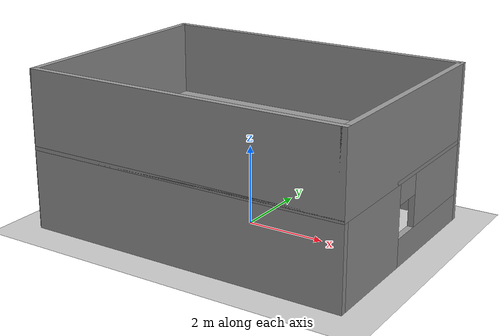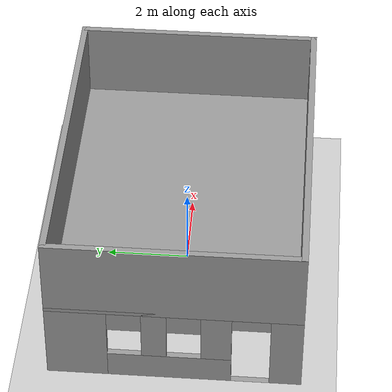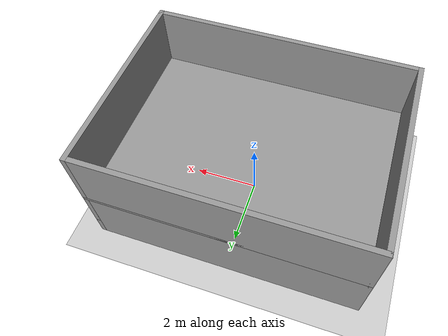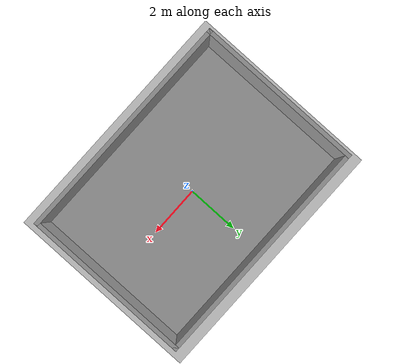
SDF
<sdf version="1.7">
 <world name="default">
  <light name="sun" type="directional">
   <pose>0 0 10 0 -0 0</pose>
   <diffuse>0.8 0.8 0.8 1</diffuse>
   <specular>0.2 0.2 0.2 1</specular>
   <attenuation>
    <range>1000</range>
    <constant>0.9</constant>
    <linear>0.01</linear>
    <quadratic>0.001</quadratic>
   </attenuation>
   <direction>-0.5 0.1 -0.9</direction>
   <spot><inner_angle>0</inner_angle><outer_angle>0</outer_angle><falloff>0</falloff></spot>
  </light>
  <model name="ground_plane">
   <static>1</static>
   <link name="link">
    <collision name="collision">
     <geometry><plane><normal>0 0 1</normal><size>100 100</size></plane></geometry>
     <surface>
      <contact><collide_bitmask>65535</collide_bitmask></contact>
      <friction><ode><mu>100</mu><mu2>50</mu2></ode></friction>
     </surface>
    </collision>
    <visual name="visual">
     <cast_shadows>0</cast_shadows>
     <geometry><plane><normal>0 0 1</normal><size>100 100</size></plane></geometry>
     <material>
      <script><uri>file://media/materials/scripts/gazebo.material</uri><name>Gazebo/Grey</name></script>
     </material>
    </visual>
   </link>
  </model>
  <gravity>0 0 -9.8</gravity>
  <magnetic_field>6e-06 2.3e-05 -4.2e-05</magnetic_field>
  <atmosphere type="adiabatic"/>
  <physics type="ode">
   <max_step_size>0.001</max_step_size>
   <real_time_factor>1</real_time_factor>
   <real_time_update_rate>1000</real_time_update_rate>
  </physics>
  <scene><ambient>0.4 0.4 0.4 1</ambient><background>0.7 0.7 0.7 1</background><shadows>1</shadows></scene>
  <spherical_coordinates>
   <surface_model>EARTH_WGS84</surface_model>
   <latitude_deg>0</latitude_deg>
   <longitude_deg>0</longitude_deg>
   <elevation>0</elevation>
   <heading_deg>0</heading_deg>
  </spherical_coordinates>
  <model name="room_10_9">
   <pose>-0.012242 0.006 0 0 -0 0</pose>
   <link name="Floor_0">
    <collision name="Floor_0_Collision">
     <geometry><box><size>8.2645 6 0.1</size></box></geometry>
     <pose>0 0 0.05 0 -0 0</pose>
    </collision>
    <visual name="Floor_0_Visual">
     <pose>0 0 0.05 0 -0 0</pose>
     <geometry><box><size>8.2645 6 0.1</size></box></geometry>
     <material>
      <script><uri>file://media/materials/scripts/gazebo.material</uri><name>Gazebo/Grey</name></script>
      <ambient>1 1 1 1</ambient>
     </material>
     <meta><layer>1</layer></meta>
    </visual>
    <pose>-8e-06 -0 2 0 -0 0</pose>
   </link>
   <link name="Wall_11">
    <collision name="Wall_11_Collision">
     <geometry><box><size>8.253 0.15 2</size></box></geometry>
     <pose>0 0 1 0 -0 0</pose>
    </collision>
    <visual name="Wall_11_Visual">
     <pose>0 0 1 0 -0 0</pose>
     <geometry><box><size>8.253 0.15 2</size></box></geometry>
     <material>
      <script><uri>file://media/materials/scripts/gazebo.material</uri><name>Gazebo/Grey</name></script>
      <ambient>1 1 1 1</ambient>
     </material>
     <meta><layer>1</layer></meta>
    </visual>
    <pose>0.005742 2.925 2 0 -0 0</pose>
   </link>
   <link name="Wall_12">
    <collision name="Wall_12_Collision">
     <geometry><box><size>6 0.15 2</size></box></geometry>
     <pose>0 0 1 0 -0 0</pose>
    </collision>
    <visual name="Wall_12_Visual">
     <pose>0 0 1 0 -0 0</pose>
     <geometry><box><size>6 0.15 2</size></box></geometry>
     <material>
      <script><uri>file://media/materials/scripts/gazebo.material</uri><name>Gazebo/Grey</name></script>
      <ambient>1 1 1 1</ambient>
     </material>
     <meta><layer>1</layer></meta>
    </visual>
    <pose>-4.05726 -0 2 0 -0 -1.5708</pose>
   </link>
   <link name="Wall_13">
    <collision name="Wall_13_Collision">
     <geometry><box><size>8.253 0.15 2</size></box></geometry>
     <pose>0 0 1 0 -0 0</pose>
    </collision>
    <visual name="Wall_13_Visual">
     <pose>0 0 1 0 -0 0</pose>
     <geometry><box><size>8.253 0.15 2</size></box></geometry>
     <material>
      <script><uri>file://media/materials/scripts/gazebo.material</uri><name>Gazebo/Grey</name></script>
      <ambient>1 1 1 1</ambient>
     </material>
     <meta><layer>1</layer></meta>
    </visual>
    <pose>0.005742 -2.925 2 0 -0 0</pose>
   </link>
   <link name="Wall_14">
    <collision name="Wall_14_Collision">
     <geometry><box><size>6 0.15 2</size></box></geometry>
     <pose>0 0 1 0 -0 0</pose>
    </collision>
    <visual name="Wall_14_Visual">
     <pose>0 0 1 0 -0 0</pose>
     <geometry><box><size>6 0.15 2</size></box></geometry>
     <material>
      <script><uri>file://media/materials/scripts/gazebo.material</uri><name>Gazebo/Grey</name></script>
      <ambient>1 1 1 1</ambient>
     </material>
     <meta><layer>1</layer></meta>
    </visual>
    <pose>4.05724 -0 2 0 -0 1.5708</pose>
   </link>
   <link name="Wall_5">
    <collision name="Wall_5_Collision">
     <geometry><box><size>8.25303 0.15 2</size></box></geometry>
     <pose>0 0 1 0 -0 0</pose>
    </collision>
    <visual name="Wall_5_Visual">
     <pose>0 0 1 0 -0 0</pose>
     <geometry><box><size>8.25303 0.15 2</size></box></geometry>
     <material>
      <script><uri>file://media/materials/scripts/gazebo.material</uri><name>Gazebo/Grey</name></script>
      <ambient>1 1 1 1</ambient>
     </material>
     <meta><layer>0</layer></meta>
    </visual>
    <pose>0.005742 2.925 0 0 -0 0</pose>
   </link>
   <link name="Wall_7">
    <pose>-4.05726 -0 0 0 -0 -1.5708</pose>
    <visual name="Wall_7_Visual_0">
     <pose>-2.27863 0 1 0 -0 0</pose>
     <geometry><box><size>1.44274 0.15 2</size></box></geometry>
     <material>
      <script><uri>file://media/materials/scripts/gazebo.material</uri><name>Gazebo/Grey</name></script>
      <ambient>1 1 1 1</ambient>
     </material>
     <meta><layer>0</layer></meta>
    </visual>
    <collision name="Wall_7_Collision_0">
     <geometry><box><size>1.44274 0.15 2</size></box></geometry>
     <pose>-2.27863 0 1 0 -0 0</pose>
    </collision>
    <visual name="Wall_7_Visual_1">
     <pose>2.62155 0 1 0 -0 0</pose>
     <geometry><box><size>0.756891 0.15 2</size></box></geometry>
     <material>
      <script><uri>file://media/materials/scripts/gazebo.material</uri><name>Gazebo/Grey</name></script>
      <ambient>1 1 1 1</ambient>
     </material>
     <meta><layer>0</layer></meta>
    </visual>
    <collision name="Wall_7_Collision_1">
     <geometry><box><size>0.756891 0.15 2</size></box></geometry>
     <pose>2.62155 0 1 0 -0 0</pose>
    </collision>
    <visual name="Wall_7_Visual_2">
     <pose>-0.107078 0 0.35 0 -0 0</pose>
     <geometry><box><size>2.90037 0.15 0.7</size></box></geometry>
     <material>
      <script><uri>file://media/materials/scripts/gazebo.material</uri><name>Gazebo/Grey</name></script>
      <ambient>1 1 1 1</ambient>
     </material>
     <meta><layer>0</layer></meta>
    </visual>
    <collision name="Wall_7_Collision_2">
     <geometry><box><size>2.90037 0.15 0.7</size></box></geometry>
     <pose>-0.107078 0 0.35 0 -0 0</pose>
    </collision>
    <visual name="Wall_7_Visual_3">
     <pose>1.79311 0 0 0 -0 0</pose>
     <geometry><box><size>0.9 0.15 0</size></box></geometry>
     <material>
      <script><uri>file://media/materials/scripts/gazebo.material</uri><name>Gazebo/Grey</name></script>
      <ambient>1 1 1 1</ambient>
     </material>
     <meta><layer>0</layer></meta>
    </visual>
    <collision name="Wall_7_Collision_3">
     <geometry><box><size>0.9 0.15 0</size></box></geometry>
     <pose>1.79311 0 0 0 -0 0</pose>
    </collision>
    <visual name="Wall_7_Visual_4">
     <pose>-0.462951 0 1.35 0 -0 0</pose>
     <geometry><box><size>0.588625 0.15 1.3</size></box></geometry>
     <material>
      <script><uri>file://media/materials/scripts/gazebo.material</uri><name>Gazebo/Grey</name></script>
      <ambient>1 1 1 1</ambient>
     </material>
     <meta><layer>0</layer></meta>
    </visual>
    <collision name="Wall_7_Collision_4">
     <geometry><box><size>0.588625 0.15 1.3</size></box></geometry>
     <pose>-0.462951 0 1.35 0 -0 0</pose>
    </collision>
    <visual name="Wall_7_Visual_5">
     <pose>0.987235 0 1.35 0 -0 0</pose>
     <geometry><box><size>0.711747 0.15 1.3</size></box></geometry>
     <material>
      <script><uri>file://media/materials/scripts/gazebo.material</uri><name>Gazebo/Grey</name></script>
      <ambient>1 1 1 1</ambient>
     </material>
     <meta><layer>0</layer></meta>
    </visual>
    <collision name="Wall_7_Collision_5">
     <geometry><box><size>0.711747 0.15 1.3</size></box></geometry>
     <pose>0.987235 0 1.35 0 -0 0</pose>
    </collision>
    <visual name="Wall_7_Visual_6">
     <pose>-1.15726 0 1.75 0 -0 0</pose>
     <geometry><box><size>0.8 0.15 0.5</size></box></geometry>
     <material>
      <script><uri>file://media/materials/scripts/gazebo.material</uri><name>Gazebo/Grey</name></script>
      <ambient>1 1 1 1</ambient>
     </material>
     <meta><layer>0</layer></meta>
    </visual>
    <collision name="Wall_7_Collision_6">
     <geometry><box><size>0.8 0.15 0.5</size></box></geometry>
     <pose>-1.15726 0 1.75 0 -0 0</pose>
    </collision>
    <visual name="Wall_7_Visual_7">
     <pose>0.231361 0 1.75 0 -0 0</pose>
     <geometry><box><size>0.8 0.15 0.5</size></box></geometry>
     <material>
      <script><uri>file://media/materials/scripts/gazebo.material</uri><name>Gazebo/Grey</name></script>
      <ambient>1 1 1 1</ambient>
     </material>
     <meta><layer>0</layer></meta>
    </visual>
    <collision name="Wall_7_Collision_7">
     <geometry><box><size>0.8 0.15 0.5</size></box></geometry>
     <pose>0.231361 0 1.75 0 -0 0</pose>
    </collision>
    <visual name="Wall_7_Visual_8">
     <pose>1.79311 0 1.85 0 -0 0</pose>
     <geometry><box><size>0.9 0.15 0.3</size></box></geometry>
     <material>
      <script><uri>file://media/materials/scripts/gazebo.material</uri><name>Gazebo/Grey</name></script>
      <ambient>1 1 1 1</ambient>
     </material>
     <meta><layer>0</layer></meta>
    </visual>
    <collision name="Wall_7_Collision_8">
     <geometry><box><size>0.9 0.15 0.3</size></box></geometry>
     <pose>1.79311 0 1.85 0 -0 0</pose>
    </collision>
   </link>
   <link name="Wall_8">
    <collision name="Wall_8_Collision">
     <geometry><box><size>8.25303 0.15 2</size></box></geometry>
     <pose>0 0 1 0 -0 0</pose>
    </collision>
    <visual name="Wall_8_Visual">
     <pose>0 0 1 0 -0 0</pose>
     <geometry><box><size>8.25303 0.15 2</size></box></geometry>
     <material>
      <script><uri>file://media/materials/scripts/gazebo.material</uri><name>Gazebo/Grey</name></script>
      <ambient>1 1 1 1</ambient>
     </material>
     <meta><layer>0</layer></meta>
    </visual>
    <pose>0.005742 -2.925 0 0 -0 0</pose>
   </link>
   <link name="Wall_9">
    <pose>4.05724 -0 0 0 -0 1.5708</pose>
    <visual name="Wall_9_Visual_0">
     <pose>-1.69004 0 1 0 -0 0</pose>
     <geometry><box><size>2.61991 0.15 2</size></box></geometry>
     <material>
      <script><uri>file://media/materials/scripts/gazebo.material</uri><name>Gazebo/Grey</name></script>
      <ambient>1 1 1 1</ambient>
     </material>
     <meta><layer>0</layer></meta>
    </visual>
    <collision name="Wall_9_Collision_0">
     <geometry><box><size>2.61991 0.15 2</size></box></geometry>
     <pose>-1.69004 0 1 0 -0 0</pose>
    </collision>
    <visual name="Wall_9_Visual_1">
     <pose>1.30996 0 0.35 0 -0 0</pose>
     <geometry><box><size>3.38009 0.15 0.7</size></box></geometry>
     <material>
      <script><uri>file://media/materials/scripts/gazebo.material</uri><name>Gazebo/Grey</name></script>
      <ambient>1 1 1 1</ambient>
     </material>
     <meta><layer>0</layer></meta>
    </visual>
    <collision name="Wall_9_Collision_1">
     <geometry><box><size>3.38009 0.15 0.7</size></box></geometry>
     <pose>1.30996 0 0.35 0 -0 0</pose>
    </collision>
    <visual name="Wall_9_Visual_2">
     <pose>1.70996 0 1.35 0 -0 0</pose>
     <geometry><box><size>2.58009 0.15 1.3</size></box></geometry>
     <material>
      <script><uri>file://media/materials/scripts/gazebo.material</uri><name>Gazebo/Grey</name></script>
      <ambient>1 1 1 1</ambient>
     </material>
     <meta><layer>0</layer></meta>
    </visual>
    <collision name="Wall_9_Collision_2">
     <geometry><box><size>2.58009 0.15 1.3</size></box></geometry>
     <pose>1.70996 0 1.35 0 -0 0</pose>
    </collision>
    <visual name="Wall_9_Visual_3">
     <pose>0.019914 0 1.75 0 -0 0</pose>
     <geometry><box><size>0.8 0.15 0.5</size></box></geometry>
     <material>
      <script><uri>file://media/materials/scripts/gazebo.material</uri><name>Gazebo/Grey</name></script>
      <ambient>1 1 1 1</ambient>
     </material>
     <meta><layer>0</layer></meta>
    </visual>
    <collision name="Wall_9_Collision_3">
     <geometry><box><size>0.8 0.15 0.5</size></box></geometry>
     <pose>0.019914 0 1.75 0 -0 0</pose>
    </collision>
   </link>
   <static>1</static>
  </model>
  <model name="unit_box">
   <pose>3.91331 1.61666 0.992942 -2e-06 -0.000147 -0.00849</pose>
   <link name="link">
    <inertial>
     <mass>1</mass>
     <inertia>
      <ixx>0.166667</ixx>
      <ixy>0</ixy>
      <ixz>0</ixz>
      <iyy>0.166667</iyy>
      <iyz>0</iyz>
      <izz>0.166667</izz>
     </inertia>
    </inertial>
    <collision name="collision"><geometry><box><size>0.0983215 1 1.98587</size></box></geometry></collision>
    <visual name="visual">
     <geometry><box><size>0.0983215 1 1.98587</size></box></geometry>
     <material>
      <script><name>Gazebo/Grey</name><uri>file://media/materials/scripts/gazebo.material</uri></script>
     </material>
    </visual>
   </link>
  </model>
 </world>
</sdf>
